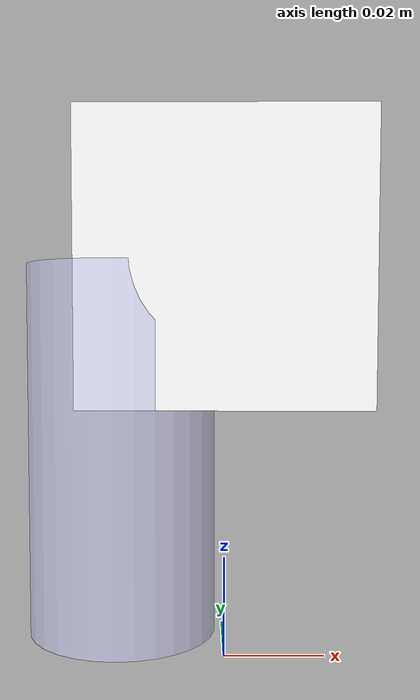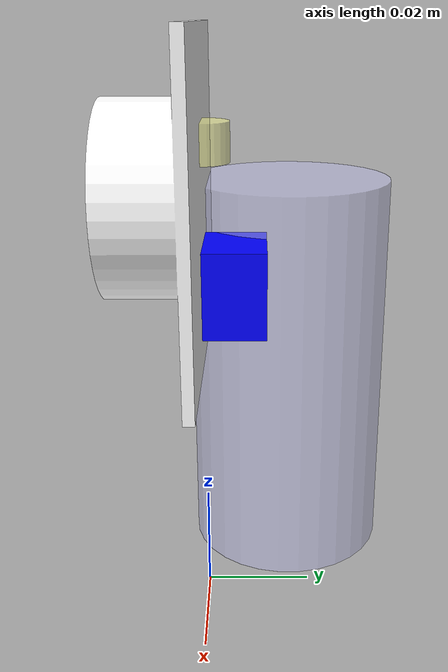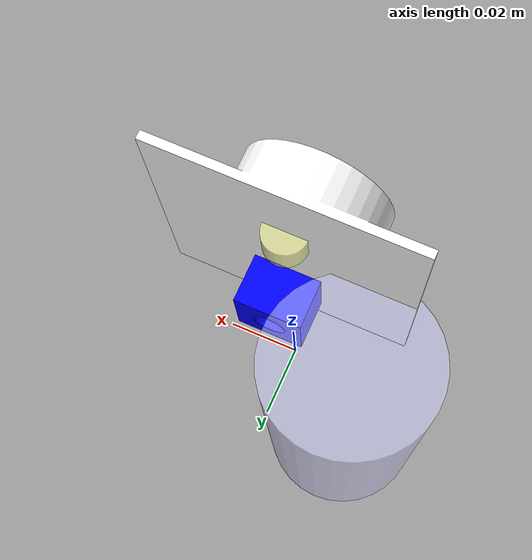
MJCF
<mujoco model="flower_deformed_final">
    <compiler angle="radian" meshdir="meshes"/>

    <asset>
        <mesh name="base_link_mesh" file="base_link.STL"/>
        <mesh name="empty_link_mesh" file="Empty_Link.STL"/>
        <mesh name="empty_link2_mesh" file="Empty_Link2.STL"/>

        <material name="mat_base" rgba="0.8 0.8 1 0.5"/>
        <material name="mat_empty" rgba="1 1 1 1"/>
        <material name="mat_empty2" rgba="0 0 1 1"/>
        <material name="mat_nectar" rgba="1 1 0.6 0.6"/>
    </asset>

    <worldbody>
        <body name="flower_base" pos="0 0 0">
            <geom type="mesh" mesh="base_link_mesh" material="mat_base"/>

            <body name="flower_plate" pos="0 0 0.079">
                <joint name="AA_joint" type="hinge" axis="0 1 0"/>
                <geom type="mesh" mesh="empty_link_mesh" material="mat_empty"/>

                <body name="flower_lego" pos="0 0 0">
                    <joint name="BB_joint" type="hinge" axis="0 0 1"/>
                    <geom type="mesh" mesh="empty_link2_mesh" material="mat_empty2"/>

                    <site name="nectar_target"
                          type="cylinder"
                          pos="0 0 0.01"
                          size="0.005 0.0035"
                          material="mat_nectar"/>
                </body>
            </body>
        </body>
    </worldbody>
</mujoco>
